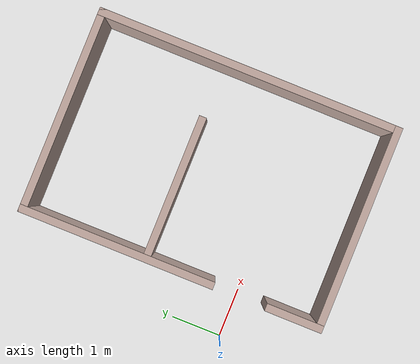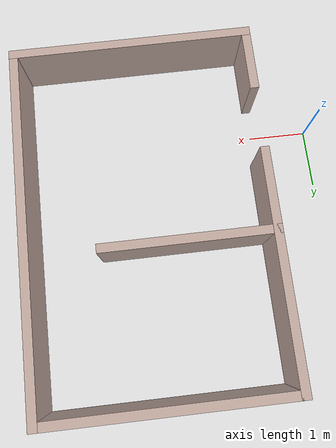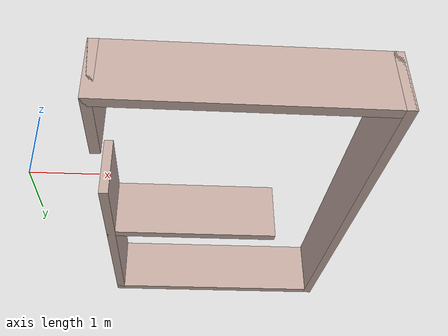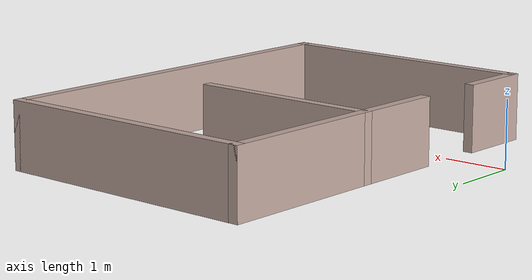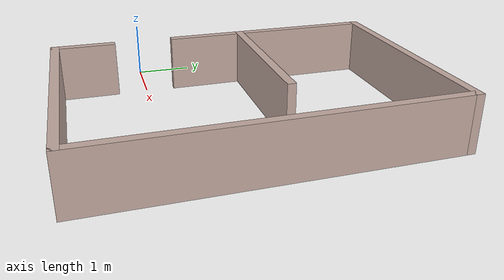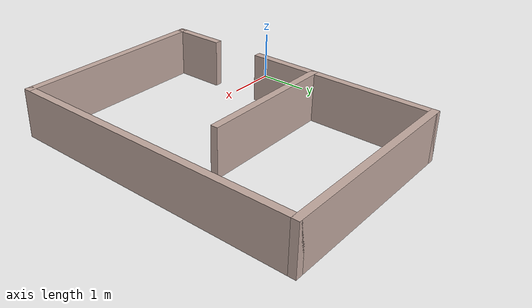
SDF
<?xml version='1.0'?>
<sdf version='1.6'>
  <model name='robocup_example_walls'>
    <pose frame=''>3 1.4 0 0 -0 0</pose>
    <link name='Wall_23'>
      <collision name='Wall_23_Collision'>
        <geometry>
          <box>
            <size>3.95 0.15 1</size>
          </box>
        </geometry>
        <pose frame=''>0 0 0.5 0 -0 0</pose>
      </collision>
      <visual name='Wall_23_Visual'>
        <pose frame=''>0 0 0.5 0 -0 0</pose>
        <geometry>
          <box>
            <size>3.95 0.15 1</size>
          </box>
        </geometry>
        <material>
          <script>
            <uri>file://media/materials/scripts/gazebo.material</uri>
            <name>Gazebo/Grey</name>
          </script>
          <ambient>0.760784 0.662745 0.627451 1</ambient>
        </material>
        <meta>
          <layer>0</layer>
        </meta>
      </visual>
      <pose frame=''>-2 1.1 0 0 -0 1.5708</pose>
    </link>
    <link name='Wall_24'>
      <collision name='Wall_24_Collision'>
        <geometry>
          <box>
            <size>4.15 0.15 1</size>
          </box>
        </geometry>
        <pose frame=''>0 0 0.5 0 -0 0</pose>
      </collision>
      <visual name='Wall_24_Visual'>
        <pose frame=''>0 0 0.5 0 -0 0</pose>
        <geometry>
          <box>
            <size>4.15 0.15 1</size>
          </box>
        </geometry>
        <material>
          <script>
            <uri>file://media/materials/scripts/gazebo.material</uri>
            <name>Gazebo/Grey</name>
          </script>
          <ambient>0.760784 0.662745 0.627451 1</ambient>
        </material>
        <meta>
          <layer>0</layer>
        </meta>
      </visual>
      <pose frame=''>-0 3 0 0 -0 0</pose>
    </link>
    <link name='Wall_26'>
      <collision name='Wall_26_Collision'>
        <geometry>
          <box>
            <size>1.15 0.15 1</size>
          </box>
        </geometry>
        <pose frame=''>0 0 0.5 0 -0 0</pose>
      </collision>
      <visual name='Wall_26_Visual'>
        <pose frame=''>0 0 0.5 0 -0 0</pose>
        <geometry>
          <box>
            <size>1.15 0.15 1</size>
          </box>
        </geometry>
        <material>
          <script>
            <uri>file://media/materials/scripts/gazebo.material</uri>
            <name>Gazebo/Grey</name>
          </script>
          <ambient>0.760784 0.662745 0.627451 1</ambient>
        </material>
        <meta>
          <layer>0</layer>
        </meta>
      </visual>
      <pose frame=''>-2 -2.5 0 0 -0 -1.5708</pose>
    </link>
    <link name='Wall_27'>
      <collision name='Wall_27_Collision'>
        <geometry>
          <box>
            <size>4.15 0.15 1</size>
          </box>
        </geometry>
        <pose frame=''>0 0 0.5 0 -0 0</pose>
      </collision>
      <visual name='Wall_27_Visual'>
        <pose frame=''>0 0 0.5 0 -0 0</pose>
        <geometry>
          <box>
            <size>4.15 0.15 1</size>
          </box>
        </geometry>
        <material>
          <script>
            <uri>file://media/materials/scripts/gazebo.material</uri>
            <name>Gazebo/Grey</name>
          </script>
          <ambient>0.760784 0.662745 0.627451 1</ambient>
        </material>
        <meta>
          <layer>0</layer>
        </meta>
      </visual>
      <pose frame=''>-0 -3 0 0 -0 0</pose>
    </link>
    <link name='Wall_28'>
      <collision name='Wall_28_Collision'>
        <geometry>
          <box>
            <size>6.15 0.15 1</size>
          </box>
        </geometry>
        <pose frame=''>0 0 0.5 0 -0 0</pose>
      </collision>
      <visual name='Wall_28_Visual'>
        <pose frame=''>0 0 0.5 0 -0 0</pose>
        <geometry>
          <box>
            <size>6.15 0.15 1</size>
          </box>
        </geometry>
        <material>
          <script>
            <uri>file://media/materials/scripts/gazebo.material</uri>
            <name>Gazebo/Grey</name>
          </script>
          <ambient>0.760784 0.662745 0.627451 1</ambient>
        </material>
        <meta>
          <layer>0</layer>
        </meta>
      </visual>
      <pose frame=''>2 0 0 0 -0 1.5708</pose>
    </link>
    <link name='Wall_32'>
      <collision name='Wall_32_Collision'>
        <geometry>
          <box>
            <size>2.95 0.15 1</size>
          </box>
        </geometry>
        <pose frame=''>0 0 0.5 0 -0 0</pose>
      </collision>
      <visual name='Wall_32_Visual'>
        <pose frame=''>0 0 0.5 0 -0 0</pose>
        <geometry>
          <box>
            <size>2.95 0.15 1</size>
          </box>
        </geometry>
        <material>
          <script>
            <uri>file://media/materials/scripts/gazebo.material</uri>
            <name>Gazebo/Grey</name>
          </script>
          <ambient>0.760784 0.662745 0.627451 1</ambient>
        </material>
        <meta>
          <layer>0</layer>
        </meta>
      </visual>
      <pose frame=''>-0.6 0.5 0 0 -0 0</pose>
    </link>
    <static>1</static>
  </model>
</sdf>
